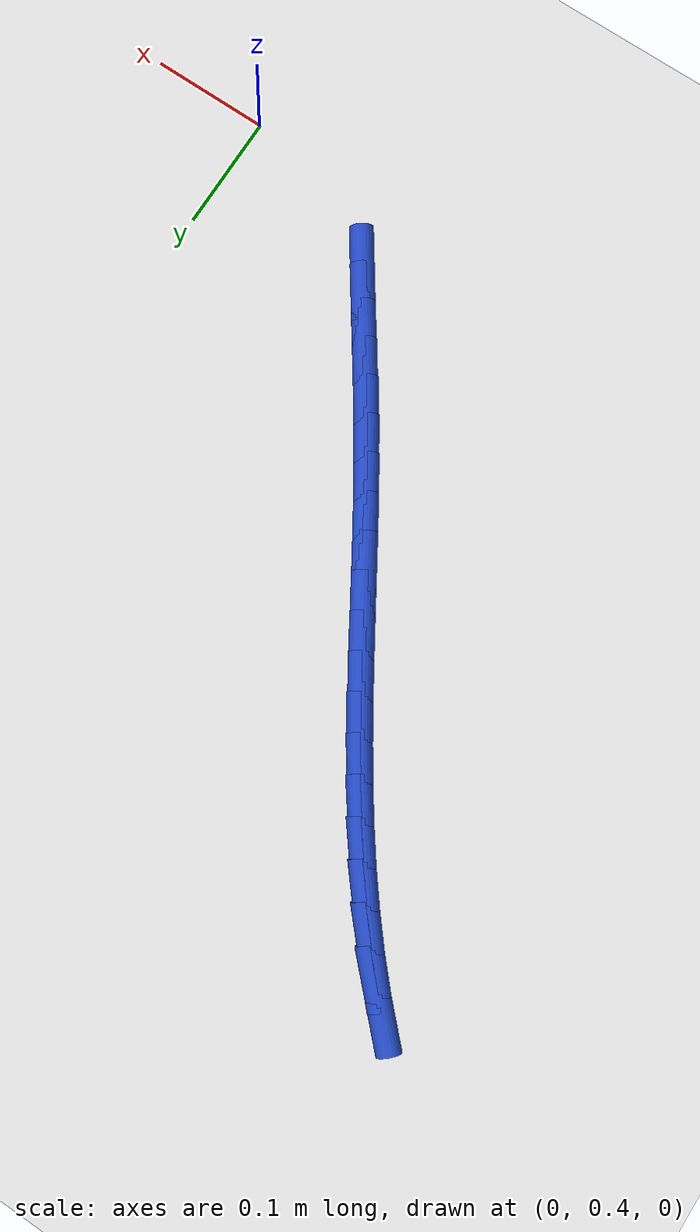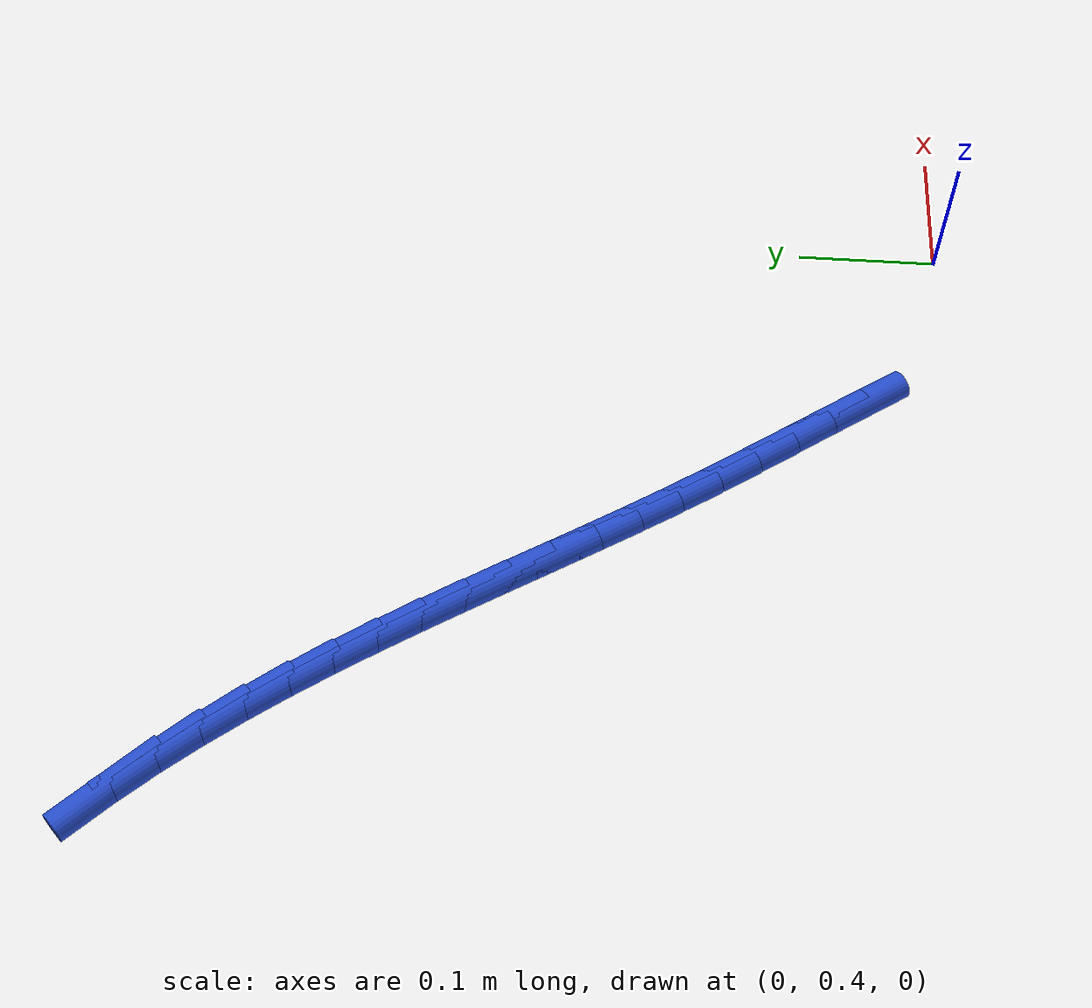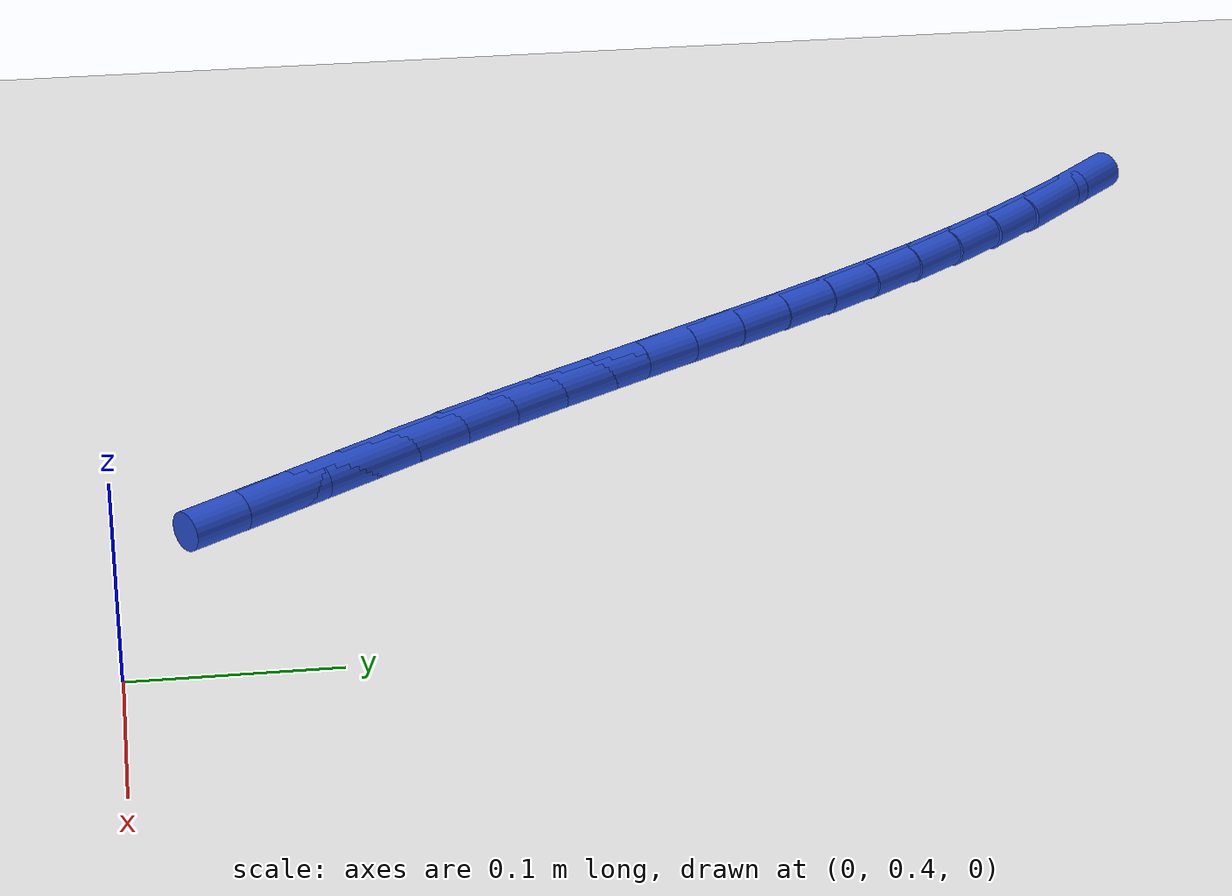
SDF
<sdf version="1.6">
 <world name="default">
  <model name="ground_plane">
   <static>1</static>
   <link name="link">
    <collision name="collision">
     <geometry><plane><normal>0 0 1</normal><size>100 100</size></plane></geometry>
     <surface><friction><ode><mu>100</mu><mu2>50</mu2></ode></friction></surface>
    </collision>
    <visual name="visual">
     <cast_shadows>0</cast_shadows>
     <geometry><plane><normal>0 0 1</normal><size>100 100</size></plane></geometry>
     <material>
      <script><uri>file://media/materials/scripts/gazebo.material</uri><name>Gazebo/WhiteGlow</name></script>
     </material>
    </visual>
   </link>
  </model>
  <model name="line">
   <link name="link_16">
    <pose>-0.14362160048545763 0.46513579184726883 0.01 0 1.57 -0.9708930663032478</pose>
    <collision name="collision">
     <geometry><cylinder><radius>0.01</radius><length>0.08</length></cylinder></geometry>
    </collision>
    <visual name="visual">
     <material>
      <script><name>Gazebo/Blue</name><uri>file://media/materials/scripts/gazebo.material</uri></script>
     </material>
     <geometry><cylinder><radius>0.01</radius><length>0.08</length></cylinder></geometry>
    </visual>
   </link>
   <link name="link_17">
    <pose>-0.16136352308402657 0.49107447237448265 0.01 0 1.57 -0.9664420455770116</pose>
    <collision name="collision">
     <geometry><cylinder><radius>0.01</radius><length>0.08</length></cylinder></geometry>
    </collision>
    <visual name="visual">
     <material>
      <script><name>Gazebo/Blue</name><uri>file://media/materials/scripts/gazebo.material</uri></script>
     </material>
     <geometry><cylinder><radius>0.01</radius><length>0.08</length></cylinder></geometry>
    </visual>
   </link>
   <link name="link_18">
    <pose>-0.17925263719129692 0.5169801420566469 0.01 0 1.57 -0.9683216995467647</pose>
    <collision name="collision">
     <geometry><cylinder><radius>0.01</radius><length>0.08</length></cylinder></geometry>
    </collision>
    <visual name="visual">
     <material>
      <script><name>Gazebo/Blue</name><uri>file://media/materials/scripts/gazebo.material</uri></script>
     </material>
     <geometry><cylinder><radius>0.01</radius><length>0.08</length></cylinder></geometry>
    </visual>
   </link>
   <link name="link_19">
    <pose>-0.19710025552560217 0.5429299027117773 0.01 0 1.57 -0.976531899796695</pose>
    <collision name="collision">
     <geometry><cylinder><radius>0.01</radius><length>0.08</length></cylinder></geometry>
    </collision>
    <visual name="visual">
     <material>
      <script><name>Gazebo/Blue</name><uri>file://media/materials/scripts/gazebo.material</uri></script>
     </material>
     <geometry><cylinder><radius>0.01</radius><length>0.08</length></cylinder></geometry>
    </visual>
   </link>
   <link name="link_20">
    <pose>-0.21471769080527603 0.5690008561578894 0.01 0 1.57 -0.9908876471693238</pose>
    <collision name="collision">
     <geometry><cylinder><radius>0.01</radius><length>0.08</length></cylinder></geometry>
    </collision>
    <visual name="visual">
     <material>
      <script><name>Gazebo/Blue</name><uri>file://media/materials/scripts/gazebo.material</uri></script>
     </material>
     <geometry><cylinder><radius>0.01</radius><length>0.08</length></cylinder></geometry>
    </visual>
   </link>
   <link name="link_21">
    <pose>-0.23192293053056182 0.5952668764066451 0.01 0 1.57 -1.0061949205408112</pose>
    <collision name="collision">
     <geometry><cylinder><radius>0.01</radius><length>0.08</length></cylinder></geometry>
    </collision>
    <visual name="visual">
     <material>
      <script><name>Gazebo/Blue</name><uri>file://media/materials/scripts/gazebo.material</uri></script>
     </material>
     <geometry><cylinder><radius>0.01</radius><length>0.08</length></cylinder></geometry>
    </visual>
   </link>
   <link name="link_22">
    <pose>-0.24868372511734166 0.6217294147752586 0.01 0 1.57 -1.0172532808980062</pose>
    <collision name="collision">
     <geometry><cylinder><radius>0.01</radius><length>0.08</length></cylinder></geometry>
    </collision>
    <visual name="visual">
     <material>
      <script><name>Gazebo/Blue</name><uri>file://media/materials/scripts/gazebo.material</uri></script>
     </material>
     <geometry><cylinder><radius>0.01</radius><length>0.08</length></cylinder></geometry>
    </visual>
   </link>
   <link name="link_23">
    <pose>-0.26511552990440557 0.6483184950953478 0.01 0 1.57 -1.0238079115313163</pose>
    <collision name="collision">
     <geometry><cylinder><radius>0.01</radius><length>0.08</length></cylinder></geometry>
    </collision>
    <visual name="visual">
     <material>
      <script><name>Gazebo/Blue</name><uri>file://media/materials/scripts/gazebo.material</uri></script>
     </material>
     <geometry><cylinder><radius>0.01</radius><length>0.08</length></cylinder></geometry>
    </visual>
   </link>
   <link name="link_24">
    <pose>-0.28134006338920253 0.6749611124458911 0.01 0 1.57 -1.0258297152912716</pose>
    <collision name="collision">
     <geometry><cylinder><radius>0.01</radius><length>0.08</length></cylinder></geometry>
    </collision>
    <visual name="visual">
     <material>
      <script><name>Gazebo/Blue</name><uri>file://media/materials/scripts/gazebo.material</uri></script>
     </material>
     <geometry><cylinder><radius>0.01</radius><length>0.08</length></cylinder></geometry>
    </visual>
   </link>
   <link name="link_25">
    <pose>-0.2974790440691817 0.7015842619058678 0.01 0 1.57 -1.023291669325934</pose>
    <collision name="collision">
     <geometry><cylinder><radius>0.01</radius><length>0.08</length></cylinder></geometry>
    </collision>
    <visual name="visual">
     <material>
      <script><name>Gazebo/Blue</name><uri>file://media/materials/scripts/gazebo.material</uri></script>
     </material>
     <geometry><cylinder><radius>0.01</radius><length>0.08</length></cylinder></geometry>
    </visual>
   </link>
   <link name="link_26">
    <pose>-0.31365419044179194 0.7281149385542562 0.01 0 1.57 -1.0161676081902289</pose>
    <collision name="collision">
     <geometry><cylinder><radius>0.01</radius><length>0.08</length></cylinder></geometry>
    </collision>
    <visual name="visual">
     <material>
      <script><name>Gazebo/Blue</name><uri>file://media/materials/scripts/gazebo.material</uri></script>
     </material>
     <geometry><cylinder><radius>0.01</radius><length>0.08</length></cylinder></geometry>
    </visual>
   </link>
   <link name="link_27">
    <pose>-0.32998722100448236 0.754480137470036 0.01 0 1.57 -1.0044338532968955</pose>
    <collision name="collision">
     <geometry><cylinder><radius>0.01</radius><length>0.08</length></cylinder></geometry>
    </collision>
    <visual name="visual">
     <material>
      <script><name>Gazebo/Blue</name><uri>file://media/materials/scripts/gazebo.material</uri></script>
     </material>
     <geometry><cylinder><radius>0.01</radius><length>0.08</length></cylinder></geometry>
    </visual>
   </link>
   <link name="link_28">
    <pose>-0.3465998542547019 0.7806068537321855 0.01 0 1.57 -0.9880737951774674</pose>
    <collision name="collision">
     <geometry><cylinder><radius>0.01</radius><length>0.08</length></cylinder></geometry>
    </collision>
    <visual name="visual">
     <material>
      <script><name>Gazebo/Blue</name><uri>file://media/materials/scripts/gazebo.material</uri></script>
     </material>
     <geometry><cylinder><radius>0.01</radius><length>0.08</length></cylinder></geometry>
    </visual>
   </link>
   <link name="link_29">
    <pose>-0.36361380868989973 0.8064220824196837 0.01 0 1.57 -0.9670854911212354</pose>
    <collision name="collision">
     <geometry><cylinder><radius>0.01</radius><length>0.08</length></cylinder></geometry>
    </collision>
    <visual name="visual">
     <material>
      <script><name>Gazebo/Blue</name><uri>file://media/materials/scripts/gazebo.material</uri></script>
     </material>
     <geometry><cylinder><radius>0.01</radius><length>0.08</length></cylinder></geometry>
    </visual>
   </link>
   <link name="link_30">
    <pose>-0.3811508028075249 0.8318528186115097 0.01 0 1.57 -0.9414922213737604</pose>
    <collision name="collision">
     <geometry><cylinder><radius>0.01</radius><length>0.08</length></cylinder></geometry>
    </collision>
    <visual name="visual">
     <material>
      <script><name>Gazebo/Blue</name><uri>file://media/materials/scripts/gazebo.material</uri></script>
     </material>
     <geometry><cylinder><radius>0.01</radius><length>0.08</length></cylinder></geometry>
    </visual>
   </link>
   <link name="link_31">
    <pose>-0.39933255510502613 0.8568260573866422 0.01 0 1.57 -0.9113557052467917</pose>
    <collision name="collision">
     <geometry><cylinder><radius>0.01</radius><length>0.08</length></cylinder></geometry>
    </collision>
    <visual name="visual">
     <material>
      <script><name>Gazebo/Blue</name><uri>file://media/materials/scripts/gazebo.material</uri></script>
     </material>
     <geometry><cylinder><radius>0.01</radius><length>0.08</length></cylinder></geometry>
    </visual>
   </link>
   <link name="link_32">
    <pose>-0.41828078407985286 0.8812687938240603 0.01 0 1.57 -0.8767912798943581</pose>
    <collision name="collision">
     <geometry><cylinder><radius>0.01</radius><length>0.08</length></cylinder></geometry>
    </collision>
    <visual name="visual">
     <material>
      <script><name>Gazebo/Blue</name><uri>file://media/materials/scripts/gazebo.material</uri></script>
     </material>
     <geometry><cylinder><radius>0.01</radius><length>0.08</length></cylinder></geometry>
    </visual>
   </link>
   <link name="link_33">
    <pose>-0.4381172082294539 0.9051080230027428 0.01 0 1.57 -0.8380728673099171</pose>
    <collision name="collision">
     <geometry><cylinder><radius>0.01</radius><length>0.08</length></cylinder></geometry>
    </collision>
    <visual name="visual">
     <material>
      <script><name>Gazebo/Blue</name><uri>file://media/materials/scripts/gazebo.material</uri></script>
     </material>
     <geometry><cylinder><radius>0.01</radius><length>0.08</length></cylinder></geometry>
    </visual>
   </link>
   <link name="link_34">
    <pose>-0.45895771676260955 0.9282684117687956 0.01 0 1.57 -0.7966787297986055</pose>
    <collision name="collision">
     <geometry><cylinder><radius>0.01</radius><length>0.08</length></cylinder></geometry>
    </collision>
    <visual name="visual">
     <material>
      <script><name>Gazebo/Blue</name><uri>file://media/materials/scripts/gazebo.material</uri></script>
     </material>
     <geometry><cylinder><radius>0.01</radius><length>0.08</length></cylinder></geometry>
    </visual>
   </link>
  </model>
 </world>
</sdf>
